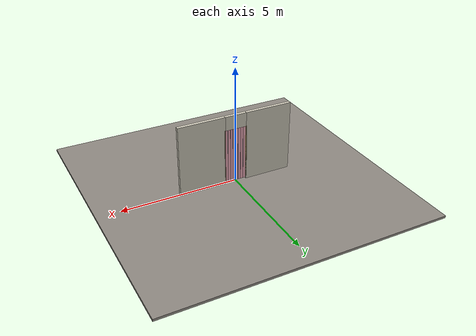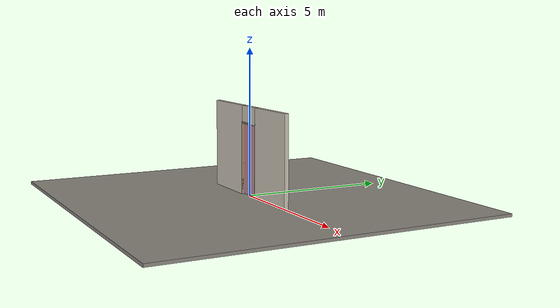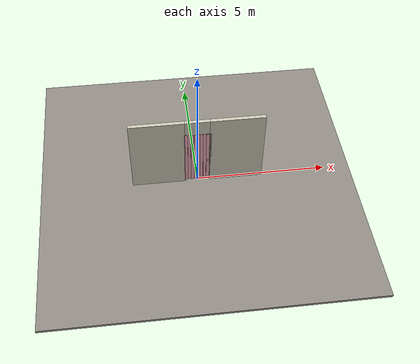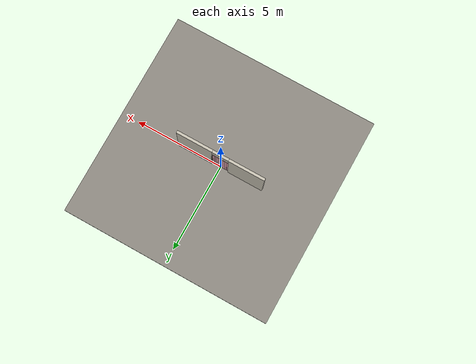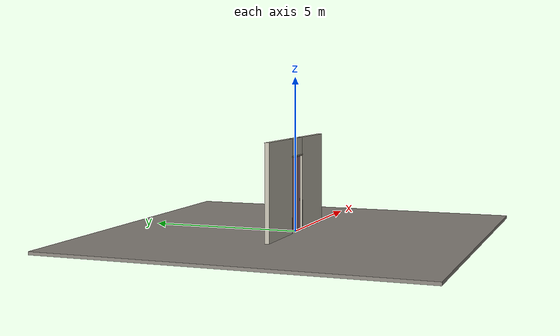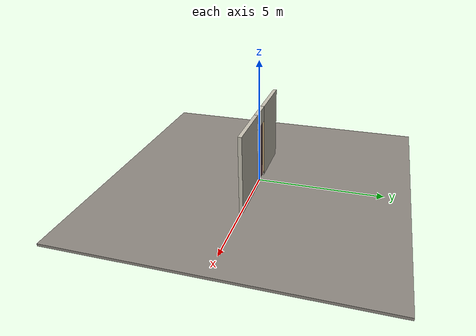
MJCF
<?xml version="1.0" ?>
<mujoco model="db0177_accordion_simple">
  <compiler angle="radian" meshdir="../../hardware" texturedir="../../textures" autolimits="true" inertiafromgeom="false"/>
  <option timestep="0.002" integrator="implicitfast" cone="elliptic" impratio="10" noslip_iterations="3">
    <flag multiccd="enable"/>
  </option>
  <size memory="16M"/>
  <default>
    <geom condim="4" solref="0.005 1" solimp="0.95 0.99 0.001"/>
    <joint solreflimit="0.005 1" solimplimit="0.95 0.99 0.001"/>
    <tendon solreflimit="0.005 1"/>
    <equality solref="0.002 1"/>
  </default>
  <visual>
    <headlight ambient="0.4 0.4 0.4" diffuse="0.7 0.7 0.7" specular="0.2 0.2 0.2"/>
    <quality shadowsize="4096"/>
    <map znear="0.01" zfar="60"/>
  </visual>
  <asset>
    <material name="mat_floor" rgba="0.55 0.53 0.5 1" specular="0.2" shininess="0.15" reflectance="0"/>
    <material name="mat_wall" rgba="0.78 0.76 0.7 1" specular="0.2" shininess="0.1" reflectance="0"/>
    <material name="mat_frame" rgba="0.82 0.7 0.5 1" specular="0.2" shininess="0.45" reflectance="0"/>
    <material name="mat_track" rgba="0.8 0.81 0.83 1" specular="0.8" shininess="0.6" reflectance="0.4"/>
    <material name="mat_hinge" rgba="0.65 0.66 0.68 1" specular="0.74" shininess="0.5" reflectance="0.36"/>
    <material name="mat_panel_0_0" rgba="0.9 0.65 0.7 1" specular="0.2" shininess="0.44" reflectance="0"/>
    <material name="mat_panel_0_1" rgba="0.9 0.65 0.7 1" specular="0.2" shininess="0.44" reflectance="0"/>
    <material name="mat_panel_0_2" rgba="0.9 0.65 0.7 1" specular="0.2" shininess="0.44" reflectance="0"/>
    <material name="mat_panel_0_3" rgba="0.9 0.65 0.7 1" specular="0.2" shininess="0.44" reflectance="0"/>
    <material name="mat_panel_0_4" rgba="0.9 0.65 0.7 1" specular="0.2" shininess="0.44" reflectance="0"/>
    <material name="mat_panel_0_5" rgba="0.9 0.65 0.7 1" specular="0.2" shininess="0.44" reflectance="0"/>
    <material name="mat_panel_0_6" rgba="0.9 0.65 0.7 1" specular="0.2" shininess="0.44" reflectance="0"/>
    <material name="mat_panel_0_7" rgba="0.9 0.65 0.7 1" specular="0.2" shininess="0.44" reflectance="0"/>
    <material name="mat_op_nickel_satin" rgba="0.72 0.7 0.66 1" specular="0.8" shininess="0.65" reflectance="0.4"/>
    <texture name="skybox" type="skybox" builtin="gradient" rgb1="0.6 0.7 0.85" rgb2="0.9 0.92 0.95" width="256" height="256"/>
  </asset>
  <worldbody>
    <light name="sun" pos="1.5 -2.5 4" dir="-0.3 0.5 -0.8" directional="true" diffuse="0.8 0.8 0.8" specular="0.3 0.3 0.3" castshadow="true"/>
    <light name="fill" pos="-1.5 2.5 3" dir="0.3 -0.5 -0.7" directional="true" diffuse="0.35 0.35 0.4" castshadow="false"/>
    <camera name="robot_view" pos="0 -2.926563 2.046937" xyaxes="1 0 0 0 0.26963 0.962964" fovy="52"/>
    <camera name="far_view" pos="0 2.926563 2.046937" xyaxes="-1 0 0 0 -0.26963 0.962964" fovy="52"/>
    <camera name="iso" pos="2.224187 -2.458313 2.515188" xyaxes="0.741536 0.670913 0 -0.242917 0.268487 0.932151" fovy="46"/>
    <camera name="detail_handle" pos="0.57167 -0.809 1.28" xyaxes="0.97561 0.219512 0 -0.070934 0.315262 0.94635" fovy="38"/>
    <geom name="floor" type="box" size="6 6 0.05" pos="0 0 -0.05" material="mat_floor" group="0" contype="1" conaffinity="1" friction="0.8 0.005 0.0001" density="2400"/>
    <geom name="wall_left" type="box" size="1.0175 0.0725 1.5275" pos="-1.4825 0 1.5275" material="mat_wall" group="0" contype="1" conaffinity="1" friction="0.6 0.005 0.0001" density="800"/>
    <geom name="wall_right" type="box" size="1.0175 0.0725 1.5275" pos="1.4825 0 1.5275" material="mat_wall" group="0" contype="1" conaffinity="1" friction="0.6 0.005 0.0001" density="800"/>
    <geom name="wall_header" type="box" size="0.465 0.0725 0.3" pos="0 0 2.755" material="mat_wall" group="0" contype="1" conaffinity="1" friction="0.6 0.005 0.0001" density="800"/>
    <geom name="jamb_hinge" type="box" size="0.0095 0.0725 1.2275" pos="-0.4745 0 1.2275" material="mat_frame" group="0" contype="1" conaffinity="1" friction="0.6 0.005 0.0001" density="400"/>
    <geom name="jamb_strike" type="box" size="0.0095 0.0725 1.2275" pos="0.4745 0 1.2275" material="mat_frame" group="0" contype="1" conaffinity="1" friction="0.6 0.005 0.0001" density="400"/>
    <geom name="stud_strike" type="box" size="0.015 0.0725 1.2275" pos="0.499 0 1.2275" material="mat_wall" group="0" contype="1" conaffinity="1" friction="0.6 0.005 0.0001" density="500"/>
    <geom name="jamb_head" type="box" size="0.499 0.0725 0.0095" pos="0.015 0 2.4645" material="mat_frame" group="0" contype="1" conaffinity="1" friction="0.6 0.005 0.0001" density="400"/>
    <geom name="head_stud" type="box" size="0.499 0.0725 0.015" pos="0.015 0 2.489" material="mat_wall" group="0" contype="1" conaffinity="1" friction="0.6 0.005 0.0001" density="500"/>
    <geom name="fold_track" type="box" size="0.465 0.02 0.015" pos="0 0 2.44" material="mat_track" group="1" contype="0" conaffinity="0" density="2700"/>
    <site name="approach_point" pos="0 -1.5 0" quat="1 0 0 0" size="0.05" rgba="0.2 0.9 0.2 0.5" group="4"/>
    <site name="goal_point" pos="0 1.5 0" quat="1 0 0 0" size="0.05" rgba="0.2 0.9 0.2 0.5" group="4"/>
    <site name="door_plane_center" pos="0 0 1.2275" quat="1 0 0 0" size="0.02" rgba="0.2 0.9 0.2 0.5" group="4"/>
    <body name="panel_0_0" pos="-0.465 0 0">
      <inertial pos="0.058291 0 1.230677" mass="4.422093" quat="0.500128 0.500128 0.499872 -0.499872" diaginertia="0.004322081 2.160025061 2.164109214"/>
      <joint name="panel_0_0_hinge" type="hinge" axis="0 0 -1" pos="0.035 0 0" limited="true" range="0 1.48353" damping="0.975088" frictionloss="8.928056" armature="0.02"/>
      <geom name="panel_0_0_slab" type="box" size="0.0535 0.009 1.2" pos="0.0585 0 1.22" material="mat_panel_0_0" group="0" contype="1" conaffinity="1" friction="0.4 0.005 0.0001" density="1"/>
      <geom name="panel_0_0_pivot_pin" type="cylinder" size="0.008 0.0105" pos="0.035 0 2.4205" material="mat_hinge" group="1" contype="0" conaffinity="0" density="7850"/>
      <body name="panel_0_1" pos="0.114 0 0">
        <inertial pos="0.000227 0.008964 1.22" mass="4.686644" quat="0.529339 -0.468829 0.529339 0.468829" diaginertia="0.000128487 2.212425445 2.21250497"/>
        <joint name="panel_0_1_hinge" type="hinge" axis="0 0 -1" pos="0 0.009 0" limited="true" range="-3.141593 0" damping="0.2" frictionloss="0.1" armature="0.005"/>
        <geom name="panel_0_1_slab" type="box" size="0.055 0.009 1.2" pos="0.057 0 1.22" material="mat_panel_0_1" group="0" contype="1" conaffinity="1" friction="0.4 0.005 0.0001" density="1"/>
        <geom name="panel_0_1_knuckle" type="cylinder" size="0.0045 1.19" pos="0 0.009 1.22" material="mat_hinge" group="1" contype="0" conaffinity="0" density="7850"/>
        <body name="panel_0_2" pos="0.114 0 0">
          <inertial pos="0.000227 -0.008964 1.22" mass="4.686644" quat="0.468829 -0.529339 0.468829 0.529339" diaginertia="0.000128487 2.212425445 2.21250497"/>
          <joint name="panel_0_2_hinge" type="hinge" axis="0 0 -1" pos="0 -0.009 0" limited="true" range="0 3.141593" damping="0.2" frictionloss="0.1" armature="0.005"/>
          <geom name="panel_0_2_slab" type="box" size="0.055 0.009 1.2" pos="0.057 0 1.22" material="mat_panel_0_2" group="0" contype="1" conaffinity="1" friction="0.4 0.005 0.0001" density="1"/>
          <geom name="panel_0_2_knuckle" type="cylinder" size="0.0045 1.19" pos="0 -0.009 1.22" material="mat_hinge" group="1" contype="0" conaffinity="0" density="7850"/>
          <body name="panel_0_3" pos="0.114 0 0">
            <inertial pos="0.000227 0.008964 1.22" mass="4.686644" quat="0.529339 -0.468829 0.529339 0.468829" diaginertia="0.000128487 2.212425445 2.21250497"/>
            <joint name="panel_0_3_hinge" type="hinge" axis="0 0 -1" pos="0 0.009 0" limited="true" range="-3.141593 0" damping="0.2" frictionloss="0.1" armature="0.005"/>
            <geom name="panel_0_3_slab" type="box" size="0.055 0.009 1.2" pos="0.057 0 1.22" material="mat_panel_0_3" group="0" contype="1" conaffinity="1" friction="0.4 0.005 0.0001" density="1"/>
            <geom name="panel_0_3_knuckle" type="cylinder" size="0.0045 1.19" pos="0 0.009 1.22" material="mat_hinge" group="1" contype="0" conaffinity="0" density="7850"/>
            <body name="panel_0_4" pos="0.114 0 0">
              <inertial pos="0.000227 -0.008964 1.22" mass="4.686644" quat="0.468829 -0.529339 0.468829 0.529339" diaginertia="0.000128487 2.212425445 2.21250497"/>
              <joint name="panel_0_4_hinge" type="hinge" axis="0 0 -1" pos="0 -0.009 0" limited="true" range="0 3.141593" damping="0.2" frictionloss="0.1" armature="0.005"/>
              <geom name="panel_0_4_slab" type="box" size="0.055 0.009 1.2" pos="0.057 0 1.22" material="mat_panel_0_4" group="0" contype="1" conaffinity="1" friction="0.4 0.005 0.0001" density="1"/>
              <geom name="panel_0_4_knuckle" type="cylinder" size="0.0045 1.19" pos="0 -0.009 1.22" material="mat_hinge" group="1" contype="0" conaffinity="0" density="7850"/>
              <body name="panel_0_5" pos="0.114 0 0">
                <inertial pos="0.000227 0.008964 1.22" mass="4.686644" quat="0.529339 -0.468829 0.529339 0.468829" diaginertia="0.000128487 2.212425445 2.21250497"/>
                <joint name="panel_0_5_hinge" type="hinge" axis="0 0 -1" pos="0 0.009 0" limited="true" range="-3.141593 0" damping="0.2" frictionloss="0.1" armature="0.005"/>
                <geom name="panel_0_5_slab" type="box" size="0.055 0.009 1.2" pos="0.057 0 1.22" material="mat_panel_0_5" group="0" contype="1" conaffinity="1" friction="0.4 0.005 0.0001" density="1"/>
                <geom name="panel_0_5_knuckle" type="cylinder" size="0.0045 1.19" pos="0 0.009 1.22" material="mat_hinge" group="1" contype="0" conaffinity="0" density="7850"/>
                <body name="panel_0_6" pos="0.114 0 0">
                  <inertial pos="0.000227 -0.008964 1.22" mass="4.686644" quat="0.468829 -0.529339 0.468829 0.529339" diaginertia="0.000128487 2.212425445 2.21250497"/>
                  <joint name="panel_0_6_hinge" type="hinge" axis="0 0 -1" pos="0 -0.009 0" limited="true" range="0 3.141593" damping="0.2" frictionloss="0.1" armature="0.005"/>
                  <geom name="panel_0_6_slab" type="box" size="0.055 0.009 1.2" pos="0.057 0 1.22" material="mat_panel_0_6" group="0" contype="1" conaffinity="1" friction="0.4 0.005 0.0001" density="1"/>
                  <geom name="panel_0_6_knuckle" type="cylinder" size="0.0045 1.19" pos="0 -0.009 1.22" material="mat_hinge" group="1" contype="0" conaffinity="0" density="7850"/>
                  <body name="panel_0_7" pos="0.114 0 0">
                    <inertial pos="0.000498 0.008885 1.219082" mass="4.966841" quat="0.449468 0.545926 0.449397 -0.54588" diaginertia="0.000233243 2.335944506 2.336122446"/>
                    <joint name="panel_0_7_hinge" type="hinge" axis="0 0 -1" pos="0 0.009 0" limited="true" range="-3.141593 0" damping="0.2" frictionloss="0.1" armature="0.005"/>
                    <geom name="panel_0_7_slab" type="box" size="0.058335 0.009 1.2" pos="0.060335 0 1.22" material="mat_panel_0_7" group="0" contype="1" conaffinity="1" friction="0.4 0.005 0.0001" density="1"/>
                    <geom name="panel_0_7_knuckle" type="cylinder" size="0.0045 1.19" pos="0 0.009 1.22" material="mat_hinge" group="1" contype="0" conaffinity="0" density="7850"/>
                    <geom name="panel_0_7_pull_n" type="box" size="0.025 0.0005 0.05" pos="0.05867 -0.0095 1" material="mat_op_nickel_satin" group="1" contype="0" conaffinity="0" density="1000"/>
                    <site name="panel_0_7_pull_grip_n" pos="0.05867 -0.009 1" quat="1 0 0 0" size="0.012" rgba="0.2 0.9 0.2 0.5" group="4"/>
                  </body>
                </body>
              </body>
            </body>
          </body>
        </body>
      </body>
    </body>
  </worldbody>
  <equality>
    <joint name="panel_0_1_couple" joint1="panel_0_1_hinge" joint2="panel_0_0_hinge" polycoef="0 -2 0 0 0" active="true"/>
    <joint name="panel_0_2_couple" joint1="panel_0_2_hinge" joint2="panel_0_0_hinge" polycoef="0 2 0 0 0" active="true"/>
    <joint name="panel_0_3_couple" joint1="panel_0_3_hinge" joint2="panel_0_0_hinge" polycoef="0 -2 0 0 0" active="true"/>
    <joint name="panel_0_4_couple" joint1="panel_0_4_hinge" joint2="panel_0_0_hinge" polycoef="0 2 0 0 0" active="true"/>
    <joint name="panel_0_5_couple" joint1="panel_0_5_hinge" joint2="panel_0_0_hinge" polycoef="0 -2 0 0 0" active="true"/>
    <joint name="panel_0_6_couple" joint1="panel_0_6_hinge" joint2="panel_0_0_hinge" polycoef="0 2 0 0 0" active="true"/>
    <joint name="panel_0_7_couple" joint1="panel_0_7_hinge" joint2="panel_0_0_hinge" polycoef="0 -2 0 0 0" active="true"/>
  </equality>
  <sensor>
    <jointpos name="panel_0_0_hinge_pos" joint="panel_0_0_hinge"/>
    <jointvel name="panel_0_0_hinge_vel" joint="panel_0_0_hinge"/>
    <jointpos name="panel_0_1_hinge_pos" joint="panel_0_1_hinge"/>
    <jointvel name="panel_0_1_hinge_vel" joint="panel_0_1_hinge"/>
    <jointpos name="panel_0_2_hinge_pos" joint="panel_0_2_hinge"/>
    <jointvel name="panel_0_2_hinge_vel" joint="panel_0_2_hinge"/>
    <jointpos name="panel_0_3_hinge_pos" joint="panel_0_3_hinge"/>
    <jointvel name="panel_0_3_hinge_vel" joint="panel_0_3_hinge"/>
    <jointpos name="panel_0_4_hinge_pos" joint="panel_0_4_hinge"/>
    <jointvel name="panel_0_4_hinge_vel" joint="panel_0_4_hinge"/>
    <jointpos name="panel_0_5_hinge_pos" joint="panel_0_5_hinge"/>
    <jointvel name="panel_0_5_hinge_vel" joint="panel_0_5_hinge"/>
    <jointpos name="panel_0_6_hinge_pos" joint="panel_0_6_hinge"/>
    <jointvel name="panel_0_6_hinge_vel" joint="panel_0_6_hinge"/>
    <jointpos name="panel_0_7_hinge_pos" joint="panel_0_7_hinge"/>
    <jointvel name="panel_0_7_hinge_vel" joint="panel_0_7_hinge"/>
  </sensor>
</mujoco>
